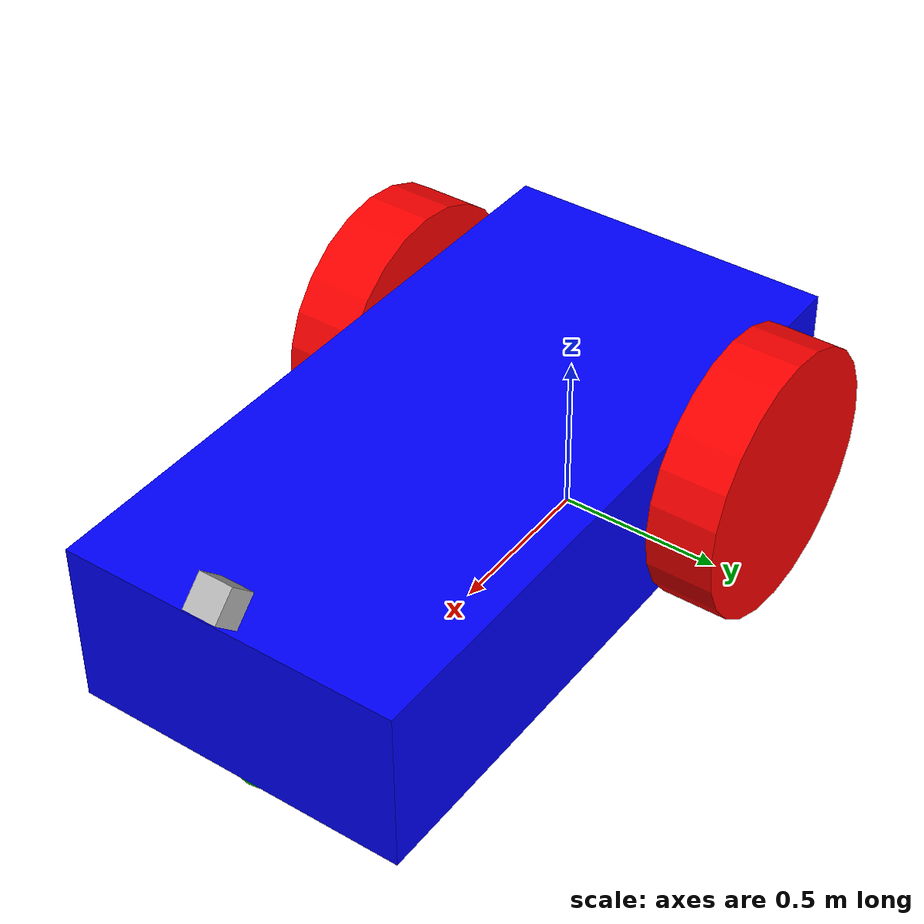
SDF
<?xml version="1.0" ?>
<sdf version="1.8">

    <model name='r0' canonical_link='chassis_r0'>

        <frame name="lidar_r0_frame" attached_to='chassis_r0'>
            <pose>0.8 0 0.5 0 0 0</pose>
        </frame>
        <link name='chassis_r0'>
            <pose relative_to='__model__'>0.5 0 0.4 0 0 0</pose>
            <inertial> <!--inertial properties of the link mass, inertia matix-->
                <mass>1.14395</mass>
                <inertia>
                    <ixx>0.126164</ixx>
                    <ixy>0</ixy>
                    <ixz>0</ixz>
                    <iyy>0.416519</iyy>
                    <iyz>0</iyz>
                    <izz>0.481014</izz>
                </inertia>
            </inertial>
            <visual name='visual'>
                <geometry>
                    <box>
                        <size>2.0 1.0 0.5</size> <!--question: this size is in meter-->
                    </box>
                </geometry>
                <!--let's add color to our link-->
                <material>
                    <ambient>0.0 0.0 1.0 1</ambient>
                    <diffuse>0.0 0.0 1.0 1</diffuse>
                    <specular>0.0 0.0 1.0 1</specular>
                </material>
            </visual>
            <collision name='collision'> <!--todo: describe why we need the collision-->
                <geometry>
                    <box>
                        <size>2.0 1.0 0.5</size>
                    </box>
                </geometry>
            </collision>
            <sensor name='gpu_lidar_r0' type='gpu_lidar'>"
                <pose relative_to='lidar_r0_frame'>0 0 0 0 0 0</pose>
                <topic>/r0/lidar</topic>
                <update_rate>10</update_rate>
                <ray>
                    <scan>
                        <horizontal>
                        <samples>640</samples>
                        <resolution>1</resolution>
                        <min_angle>-1.396263</min_angle>
                        <max_angle>1.396263</max_angle>
                        </horizontal>
                        <vertical>
                        <samples>1</samples>
                        <resolution>0.01</resolution>
                        <min_angle>0</min_angle>
                        <max_angle>0</max_angle>
                        </vertical>
                    </scan>
                <range>
                    <min>0.08</min>
                    <max>10.0</max>
                    <resolution>0.01</resolution>
                </range>
                </ray>
                <always_on>1</always_on>
                <visualize>true</visualize>
            </sensor>
        </link>

        <!--let's build the left wheel-->
        <link name='left_wheel_r0'>
            <pose relative_to="chassis_r0">-0.5 0.6 0 -1.5707 0 0</pose> <!--angles are in radian-->
            <inertial>
                <mass>2</mass>
                <inertia>
                    <ixx>0.145833</ixx>
                    <ixy>0</ixy>
                    <ixz>0</ixz>
                    <iyy>0.145833</iyy>
                    <iyz>0</iyz>
                    <izz>0.125</izz>
                </inertia>
            </inertial>
            <visual name='visual'>
                <geometry>
                    <cylinder>
                        <radius>0.4</radius>
                        <length>0.2</length>
                    </cylinder>
                </geometry>
                <material>
                    <ambient>1.0 0.0 0.0 1</ambient>
                    <diffuse>1.0 0.0 0.0 1</diffuse>
                    <specular>1.0 0.0 0.0 1</specular>
                </material>
            </visual>
            <collision name='collision'>
                <geometry>
                    <cylinder>
                        <radius>0.4</radius>
                        <length>0.2</length>
                    </cylinder>
                </geometry>
            </collision>
        </link>

        <!--copy and paste for right wheel but change position-->
        <link name='right_wheel_r0'>
            <pose relative_to="chassis_r0">-0.5 -0.6 0 -1.5707 0 0</pose> <!--angles are in radian-->
            <inertial>
                <mass>1</mass>
                <inertia>
                    <ixx>0.145833</ixx>
                    <ixy>0</ixy>
                    <ixz>0</ixz>
                    <iyy>0.145833</iyy>
                    <iyz>0</iyz>
                    <izz>0.125</izz>
                </inertia>
            </inertial>
            <visual name='visual'>
                <geometry>
                    <cylinder>
                        <radius>0.4</radius>
                        <length>0.2</length>
                    </cylinder>
                </geometry>
                <material>
                    <ambient>1.0 0.0 0.0 1</ambient>
                    <diffuse>1.0 0.0 0.0 1</diffuse>
                    <specular>1.0 0.0 0.0 1</specular>
                </material>
            </visual>
            <collision name='collision'>
                <geometry>
                    <cylinder>
                        <radius>0.4</radius>
                        <length>0.2</length>
                    </cylinder>
                </geometry>
            </collision>
        </link>

        <frame name="caster_r0_frame" attached_to='chassis_r0'>
            <pose>0.8 0 -0.2 0 0 0</pose>
        </frame>

        <!--caster wheel-->
        <link name='caster_r0'>
            <pose relative_to='caster_r0_frame'/>
            <inertial>
                <mass>1</mass>
                <inertia>
                    <ixx>0.1</ixx>
                    <ixy>0</ixy>
                    <ixz>0</ixz>
                    <iyy>0.1</iyy>
                    <iyz>0</iyz>
                    <izz>0.1</izz>
                </inertia>
            </inertial>
            <visual name='visual'>
                <geometry>
                    <sphere>
                        <radius>0.2</radius>
                    </sphere>
                </geometry>
                <material>
                    <ambient>0.0 1 0.0 1</ambient>
                    <diffuse>0.0 1 0.0 1</diffuse>
                    <specular>0.0 1 0.0 1</specular>
                </material>
            </visual>
            <collision name='collision'>
                <geometry>
                    <sphere>
                        <radius>0.2</radius>
                    </sphere>
                </geometry>
            </collision>
        </link>

        <link name="rgbd_camera">
            <pose relative_to="__model__">1.5 0 0.75 0 0.785 0</pose>
            <inertial>
                <mass>0.1</mass>
                <inertia>
                    <ixx>0.000166667</ixx>
                    <iyy>0.000166667</iyy>
                    <izz>0.000166667</izz>
                </inertia>
            </inertial>
            <collision name="collision">
                <geometry>
                    <box>
                        <size>0.1 0.1 0.1</size>
                    </box>
                </geometry>
            </collision>
            <visual name="visual">
                <geometry>
                    <box>
                        <size>0.1 0.1 0.1</size>
                    </box>
                </geometry>
            </visual>
            <sensor name="rgbd_camera" type="rgbd_camera">
            <camera>
                <horizontal_fov>1.047</horizontal_fov>
                <image>
                    <width>320</width>
                    <height>240</height>
                </image>
                <clip>
                    <near>0.1</near>
                    <far>100</far>
                </clip>
            </camera>
            <always_on>1</always_on>
            <update_rate>30</update_rate>
            <visualize>true</visualize>
            <enable_metrics>true</enable_metrics>
            </sensor>
        </link>

        <joint name='camera_joint_r0' type='fixed'>
            <pose relative_to='__model__'/>
            <parent>__model__</parent>
            <child>rgbd_camera</child>
        </joint>

        <joint name='left_wheel_joint_r0' type='revolute'> <!--continous joint is not supported yet-->
            <pose relative_to='left_wheel_r0'/>
            <parent>chassis_r0</parent>
            <child>left_wheel_r0</child>
            <axis>
                <xyz expressed_in='__model__'>0 1 0</xyz> <!--can be defined as any frame or even arbitrary frames-->
                <limit>
                    <lower>-1.79769e+308</lower>    <!--negative infinity-->
                    <upper>1.79769e+308</upper>     <!--positive infinity-->
                </limit>
            </axis>
        </joint>

        <joint name='right_wheel_joint_r0' type='revolute'>
            <pose relative_to='right_wheel_r0'/>
            <parent>chassis_r0</parent>
            <child>right_wheel_r0</child>
            <axis>
                <xyz expressed_in='__model__'>0 1 0</xyz>
                <limit>
                    <lower>-1.79769e+308</lower>    <!--negative infinity-->
                    <upper>1.79769e+308</upper>     <!--positive infinity-->
                </limit>
            </axis>
        </joint>

        <!--different type of joints ball joint--> <!--defult value is the child-->
        <joint name='caster_wheel_r0' type='ball'>
            <parent>chassis_r0</parent>
            <child>caster_r0</child>
        </joint>
        <!--diff drive plugin-->
        <plugin
            filename="gz-sim-diff-drive-system"
            name="gz::sim::systems::DiffDrive">
            <left_joint>left_wheel_joint_r0</left_joint>
            <right_joint>right_wheel_joint_r0</right_joint>
            <wheel_separation>1.2</wheel_separation>
            <wheel_radius>0.4</wheel_radius>
            <odom_publish_frequency>1</odom_publish_frequency>
        </plugin>
    </model>

</sdf>
